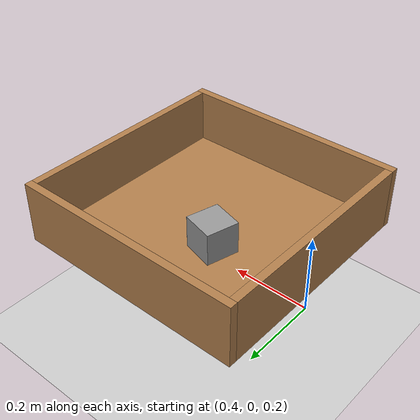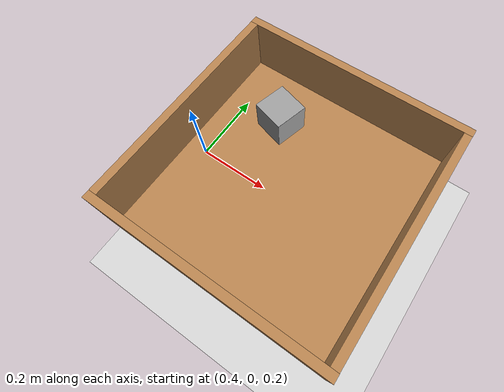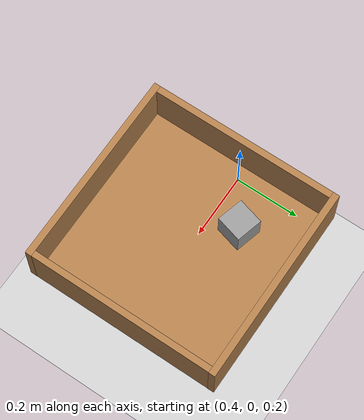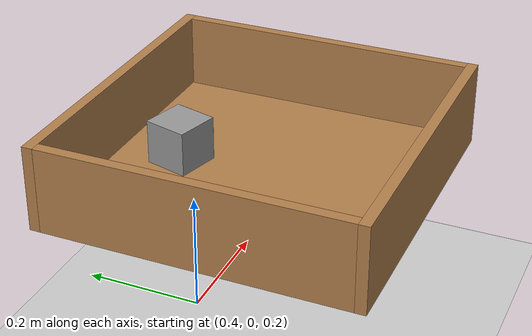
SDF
<sdf version="1.4">
 <world name="default">
  <include><uri>model://ground_plane</uri></include>
  <include><uri>model://sun</uri></include>
  <include>
   <uri>model://kuka_kr6_gazebo/models/wooden_case_modi</uri>
   <name>wooden_case</name>
   <pose>1.0 0 0.36 0 -1.57 0</pose>
  </include>
  <include>
   <uri>model://kuka_kr6_gazebo/models/unit_box</uri>
   <name>box</name>
   <pose>0.58 0.115 0.3 0 0 -0.2617</pose>
  </include>
 </world>
</sdf>

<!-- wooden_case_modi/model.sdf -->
<sdf version='1.6'>
  <model name='wooden_case_modi'>
    <link name='base'>
      <pose frame=''>-0 0 0.024 0 -0 0</pose>
      <inertial>
        <pose frame=''>-0.022184 0 0.171592 0 -0 0</pose>
        <mass>3.96264</mass>
        <inertia>
          <ixx>0.213536</ixx>
          <ixy>0</ixy>
          <ixz>0.00077938</ixz>
          <iyy>0.0708943</iyy>
          <iyz>0</iyz>
          <izz>0.154604</izz>
        </inertia>
      </inertial>
      <self_collide>0</self_collide>
      <kinematic>0</kinematic>
      <gravity>1</gravity>
      <visual name='visual_back'>
        <pose frame=''>-0.07 0 0.3 0 -0 0</pose>
        <geometry>
          <box>
            <size>0.02 0.56 0.56</size>
          </box>
        </geometry>
        <material>
          <script>
            <uri>file://media/materials/scripts/gazebo.material</uri>
            <name>Gazebo/Wood</name>
          </script>
          <shader type='pixel'>
            <normal_map>__default__</normal_map>
          </shader>
          <ambient>1 1 1 1</ambient>
          <diffuse>1 1 1 1</diffuse>
          <specular>0.2 0.2 0.2 1</specular>
          <emissive>0 0 0 1</emissive>
        </material>
        <transparency>0</transparency>
        <cast_shadows>1</cast_shadows>
      </visual>
      <visual name='visual_bottom'>
        <pose frame=''>0 0 0.01 0 -0 0</pose>
        <geometry>
          <box>
            <size>0.16 0.56 0.01905</size>
          </box>
        </geometry>
        <material>
          <script>
            <uri>file://media/materials/scripts/gazebo.material</uri>
            <name>Gazebo/Wood</name>
          </script>
          <shader type='pixel'>
            <normal_map>__default__</normal_map>
          </shader>
          <ambient>1 1 1 1</ambient>
          <diffuse>1 1 1 1</diffuse>
          <specular>0.2 0.2 0.2 1</specular>
          <emissive>0 0 0 1</emissive>
        </material>
        <transparency>0</transparency>
        <cast_shadows>1</cast_shadows>
      </visual>
      <visual name='visual_top'>
        <pose frame=''>0 0 0.59 0 -0 0</pose>
        <geometry>
          <box>
            <size>0.16 0.56 0.02</size>
          </box>
        </geometry>
        <material>
          <script>
            <uri>file://media/materials/scripts/gazebo.material</uri>
            <name>Gazebo/Wood</name>
          </script>
          <shader type='pixel'>
            <normal_map>__default__</normal_map>
          </shader>
          <ambient>1 1 1 1</ambient>
          <diffuse>1 1 1 1</diffuse>
          <specular>0.2 0.2 0.2 1</specular>
          <emissive>0 0 0 1</emissive>
        </material>
        <transparency>0</transparency>
        <cast_shadows>1</cast_shadows>
      </visual>
      <visual name='visual_left'>
        <pose frame=''>0 -0.29 0.3 0 -0 0</pose>
        <geometry>
          <box>
            <size>0.16 0.02 0.6</size>
          </box>
        </geometry>
        <material>
          <script>
            <uri>file://media/materials/scripts/gazebo.material</uri>
            <name>Gazebo/Wood</name>
          </script>
          <shader type='pixel'>
            <normal_map>__default__</normal_map>
          </shader>
          <ambient>1 1 1 1</ambient>
          <diffuse>1 1 1 1</diffuse>
          <specular>0.2 0.2 0.2 1</specular>
          <emissive>0 0 0 1</emissive>
        </material>
        <transparency>0</transparency>
        <cast_shadows>1</cast_shadows>
      </visual>
      <visual name='visual_right'>
        <pose frame=''>0 0.29 0.3 0 -0 0</pose>
        <geometry>
          <box>
            <size>0.16 0.02 0.6</size>
          </box>
        </geometry>
        <material>
          <script>
            <uri>file://media/materials/scripts/gazebo.material</uri>
            <name>Gazebo/Wood</name>
          </script>
          <shader type='pixel'>
            <normal_map>__default__</normal_map>
          </shader>
          <ambient>1 1 1 1</ambient>
          <diffuse>1 1 1 1</diffuse>
          <specular>0.2 0.2 0.2 1</specular>
          <emissive>0 0 0 1</emissive>
        </material>
        <transparency>0</transparency>
        <cast_shadows>1</cast_shadows>
      </visual>
      <collision name='collision_back'>
        <laser_retro>0</laser_retro>
        <max_contacts>10</max_contacts>
        <pose frame=''>-0.07 0 0.3 0 -0 0</pose>
        <geometry>
          <box>
            <size>0.02 0.56 0.56</size>
          </box>
        </geometry>
        <surface>
          <friction>
            <ode>
              <mu>1</mu>
              <mu2>1</mu2>
              <fdir1>0 0 0</fdir1>
              <slip1>0</slip1>
              <slip2>0</slip2>
            </ode>
            <torsional>
              <coefficient>1</coefficient>
              <patch_radius>0</patch_radius>
              <surface_radius>0.01</surface_radius>
              <use_patch_radius>0</use_patch_radius>
              <ode>
                <slip>0</slip>
              </ode>
            </torsional>
          </friction>
          <bounce>
            <restitution_coefficient>0</restitution_coefficient>
            <threshold>1e+06</threshold>
          </bounce>
          <contact>
            <collide_without_contact>0</collide_without_contact>
            <collide_without_contact_bitmask>1</collide_without_contact_bitmask>
            <collide_bitmask>1</collide_bitmask>
            <ode>
              <soft_cfm>0</soft_cfm>
              <soft_erp>0.2</soft_erp>
              <kp>100000</kp>
              <kd>100</kd>
              <max_vel>100</max_vel>
              <min_depth>0.001</min_depth>
            </ode>
            <bullet>
              <split_impulse>1</split_impulse>
              <split_impulse_penetration_threshold>-0.01</split_impulse_penetration_threshold>
              <soft_cfm>0</soft_cfm>
              <soft_erp>0.2</soft_erp>
              <kp>100000</kp>
              <kd>100</kd>
            </bullet>
          </contact>
        </surface>
      </collision>
      <collision name='collision_bottom'>
        <laser_retro>0</laser_retro>
        <max_contacts>10</max_contacts>
        <pose frame=''>0 0 0.01 0 -0 0</pose>
        <geometry>
          <box>
            <size>0.16 0.56 0.01905</size>
          </box>
        </geometry>
        <surface>
          <friction>
            <ode>
              <mu>1</mu>
              <mu2>1</mu2>
              <fdir1>0 0 0</fdir1>
              <slip1>0</slip1>
              <slip2>0</slip2>
            </ode>
            <torsional>
              <coefficient>1</coefficient>
              <patch_radius>0</patch_radius>
              <surface_radius>0.01</surface_radius>
              <use_patch_radius>0</use_patch_radius>
              <ode>
                <slip>0</slip>
              </ode>
            </torsional>
          </friction>
          <bounce>
            <restitution_coefficient>0</restitution_coefficient>
            <threshold>1e+06</threshold>
          </bounce>
          <contact>
            <collide_without_contact>0</collide_without_contact>
            <collide_without_contact_bitmask>1</collide_without_contact_bitmask>
            <collide_bitmask>1</collide_bitmask>
            <ode>
              <soft_cfm>0</soft_cfm>
              <soft_erp>0.2</soft_erp>
              <kp>100000</kp>
              <kd>100</kd>
              <max_vel>100</max_vel>
              <min_depth>0.001</min_depth>
            </ode>
            <bullet>
              <split_impulse>1</split_impulse>
              <split_impulse_penetration_threshold>-0.01</split_impulse_penetration_threshold>
              <soft_cfm>0</soft_cfm>
              <soft_erp>0.2</soft_erp>
              <kp>100000</kp>
              <kd>100</kd>
            </bullet>
          </contact>
        </surface>
      </collision>
      <collision name='collision_top'>
        <laser_retro>0</laser_retro>
        <max_contacts>10</max_contacts>
        <pose frame=''>0 0 0.59 0 -0 0</pose>
        <geometry>
          <box>
            <size>0.16 0.56 0.01905</size>
          </box>
        </geometry>
        <surface>
          <friction>
            <ode>
              <mu>1</mu>
              <mu2>1</mu2>
              <fdir1>0 0 0</fdir1>
              <slip1>0</slip1>
              <slip2>0</slip2>
            </ode>
            <torsional>
              <coefficient>1</coefficient>
              <patch_radius>0</patch_radius>
              <surface_radius>0.01</surface_radius>
              <use_patch_radius>0</use_patch_radius>
              <ode>
                <slip>0</slip>
              </ode>
            </torsional>
          </friction>
          <bounce>
            <restitution_coefficient>0</restitution_coefficient>
            <threshold>1e+06</threshold>
          </bounce>
          <contact>
            <collide_without_contact>0</collide_without_contact>
            <collide_without_contact_bitmask>1</collide_without_contact_bitmask>
            <collide_bitmask>1</collide_bitmask>
            <ode>
              <soft_cfm>0</soft_cfm>
              <soft_erp>0.2</soft_erp>
              <kp>100000</kp>
              <kd>100</kd>
              <max_vel>100</max_vel>
              <min_depth>0.001</min_depth>
            </ode>
            <bullet>
              <split_impulse>1</split_impulse>
              <split_impulse_penetration_threshold>-0.01</split_impulse_penetration_threshold>
              <soft_cfm>0</soft_cfm>
              <soft_erp>0.2</soft_erp>
              <kp>100000</kp>
              <kd>100</kd>
            </bullet>
          </contact>
        </surface>
      </collision>
      <collision name='collision_right'>
        <laser_retro>0</laser_retro>
        <max_contacts>10</max_contacts>
        <pose frame=''>0 0.29 0.3 0 -0 0</pose>
        <geometry>
          <box>
            <size>0.16 0.02 0.6</size>
          </box>
        </geometry>
        <surface>
          <friction>
            <ode>
              <mu>1</mu>
              <mu2>1</mu2>
              <fdir1>0 0 0</fdir1>
              <slip1>0</slip1>
              <slip2>0</slip2>
            </ode>
            <torsional>
              <coefficient>1</coefficient>
              <patch_radius>0</patch_radius>
              <surface_radius>0.01</surface_radius>
              <use_patch_radius>0</use_patch_radius>
              <ode>
                <slip>0</slip>
              </ode>
            </torsional>
          </friction>
          <bounce>
            <restitution_coefficient>0</restitution_coefficient>
            <threshold>1e+06</threshold>
          </bounce>
          <contact>
            <collide_without_contact>0</collide_without_contact>
            <collide_without_contact_bitmask>1</collide_without_contact_bitmask>
            <collide_bitmask>1</collide_bitmask>
            <ode>
              <soft_cfm>0</soft_cfm>
              <soft_erp>0.2</soft_erp>
              <kp>100000</kp>
              <kd>100</kd>
              <max_vel>100</max_vel>
              <min_depth>0.001</min_depth>
            </ode>
            <bullet>
              <split_impulse>1</split_impulse>
              <split_impulse_penetration_threshold>-0.01</split_impulse_penetration_threshold>
              <soft_cfm>0</soft_cfm>
              <soft_erp>0.2</soft_erp>
              <kp>100000</kp>
              <kd>100</kd>
            </bullet>
          </contact>
        </surface>
      </collision>
      <collision name='collision_left'>
        <laser_retro>0</laser_retro>
        <max_contacts>10</max_contacts>
        <pose frame=''>0 -0.29 0.3 0 -0 0</pose>
        <geometry>
          <box>
            <size>0.16 0.02 0.6</size>
          </box>
        </geometry>
        <surface>
          <friction>
            <ode>
              <mu>1</mu>
              <mu2>1</mu2>
              <fdir1>0 0 0</fdir1>
              <slip1>0</slip1>
              <slip2>0</slip2>
            </ode>
            <torsional>
              <coefficient>1</coefficient>
              <patch_radius>0</patch_radius>
              <surface_radius>0.01</surface_radius>
              <use_patch_radius>0</use_patch_radius>
              <ode>
                <slip>0</slip>
              </ode>
            </torsional>
          </friction>
          <bounce>
            <restitution_coefficient>0</restitution_coefficient>
            <threshold>1e+06</threshold>
          </bounce>
          <contact>
            <collide_without_contact>0</collide_without_contact>
            <collide_without_contact_bitmask>1</collide_without_contact_bitmask>
            <collide_bitmask>1</collide_bitmask>
            <ode>
              <soft_cfm>0</soft_cfm>
              <soft_erp>0.2</soft_erp>
              <kp>100000</kp>
              <kd>100</kd>
              <max_vel>100</max_vel>
              <min_depth>0.001</min_depth>
            </ode>
            <bullet>
              <split_impulse>1</split_impulse>
              <split_impulse_penetration_threshold>-0.01</split_impulse_penetration_threshold>
              <soft_cfm>0</soft_cfm>
              <soft_erp>0.2</soft_erp>
              <kp>100000</kp>
              <kd>100</kd>
            </bullet>
          </contact>
        </surface>
      </collision>
    </link>
    <static>0</static>
    <allow_auto_disable>1</allow_auto_disable>
  </model>
</sdf>

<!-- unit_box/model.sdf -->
<sdf version='1.6'>
  <model name='unit_box'>
    <link name='link'>
      <pose frame=''>0 0 0.091424 0 -0 0</pose>
      <inertial>
        <mass>1</mass>
        <inertia>
          <ixx>0.166667</ixx>
          <ixy>0</ixy>
          <ixz>0</ixz>
          <iyy>0.166667</iyy>
          <iyz>0</iyz>
          <izz>0.166667</izz>
        </inertia>
        <pose frame=''>0 0 0 0 -0 0</pose>
      </inertial>
      <self_collide>0</self_collide>
      <kinematic>0</kinematic>
      <gravity>1</gravity>
      <visual name='aruco'>
        <pose frame=''>0.04001 0 -0.004 0 -0 0</pose>
        <geometry>
          <mesh>
            <uri>model://kuka_kr6_gazebo/models/aruco_box/meshes/aruco.dae</uri>
            <scale>0.1 1.33 1.33</scale>
          </mesh>
        </geometry>
        <material>
          <shader type='pixel'>
            <normal_map>__default__</normal_map>
          </shader>
        </material>
        <cast_shadows>1</cast_shadows>
        <transparency>0</transparency>
      </visual>
      <visual name='visual'>
        <geometry>
          <box>
            <size>0.08 0.08 0.08</size>
          </box>
        </geometry>
        <material>
          <script>
            <name>Gazebo/Grey</name>
            <uri>file://media/materials/scripts/gazebo.material</uri>
          </script>
          <shader type='pixel'>
            <normal_map>__default__</normal_map>
          </shader>
          <ambient>0.3 0.3 0.3 1</ambient>
          <diffuse>0.7 0.7 0.7 1</diffuse>
          <specular>0.01 0.01 0.01 1</specular>
          <emissive>0 0 0 1</emissive>
        </material>
        <pose frame=''>0 0 0 0 -0 0</pose>
        <transparency>0</transparency>
        <cast_shadows>1</cast_shadows>
      </visual>
      <collision name='collision'>
        <laser_retro>0</laser_retro>
        <max_contacts>10</max_contacts>
        <pose frame=''>0 0 0 0 -0 0</pose>
        <geometry>
          <box>
            <size>0.08 0.08 0.08</size>
          </box>
        </geometry>
        <surface>
          <friction>
            <ode>
              <mu>1</mu>
              <mu2>1</mu2>
              <fdir1>0 0 0</fdir1>
              <slip1>0</slip1>
              <slip2>0</slip2>
            </ode>
            <torsional>
              <coefficient>1</coefficient>
              <patch_radius>0</patch_radius>
              <surface_radius>0</surface_radius>
              <use_patch_radius>1</use_patch_radius>
              <ode>
                <slip>0</slip>
              </ode>
            </torsional>
          </friction>
          <bounce>
            <restitution_coefficient>0</restitution_coefficient>
            <threshold>1e+06</threshold>
          </bounce>
          <contact>
            <collide_without_contact>0</collide_without_contact>
            <collide_without_contact_bitmask>1</collide_without_contact_bitmask>
            <collide_bitmask>1</collide_bitmask>
            <ode>
              <soft_cfm>0</soft_cfm>
              <soft_erp>0.2</soft_erp>
              <kp>1e+13</kp>
              <kd>1</kd>
              <max_vel>0.01</max_vel>
              <min_depth>0</min_depth>
            </ode>
            <bullet>
              <split_impulse>1</split_impulse>
              <split_impulse_penetration_threshold>-0.01</split_impulse_penetration_threshold>
              <soft_cfm>0</soft_cfm>
              <soft_erp>0.2</soft_erp>
              <kp>1e+13</kp>
              <kd>1</kd>
            </bullet>
          </contact>
        </surface>
      </collision>
    </link>
    <static>0</static>
    <allow_auto_disable>1</allow_auto_disable>
  </model>
</sdf>
